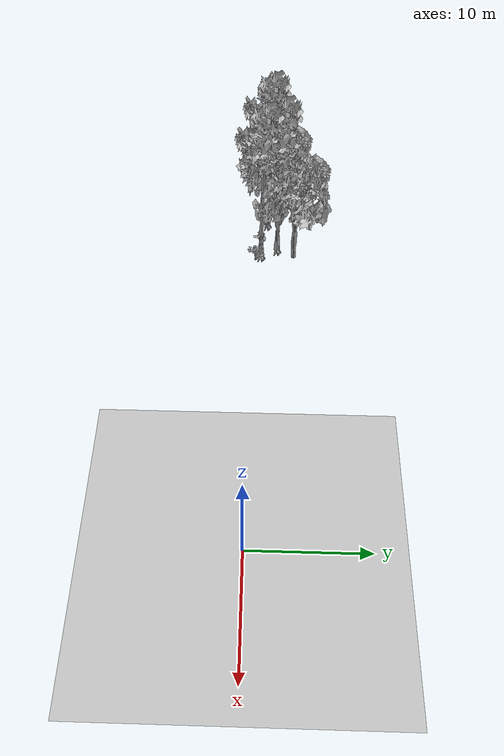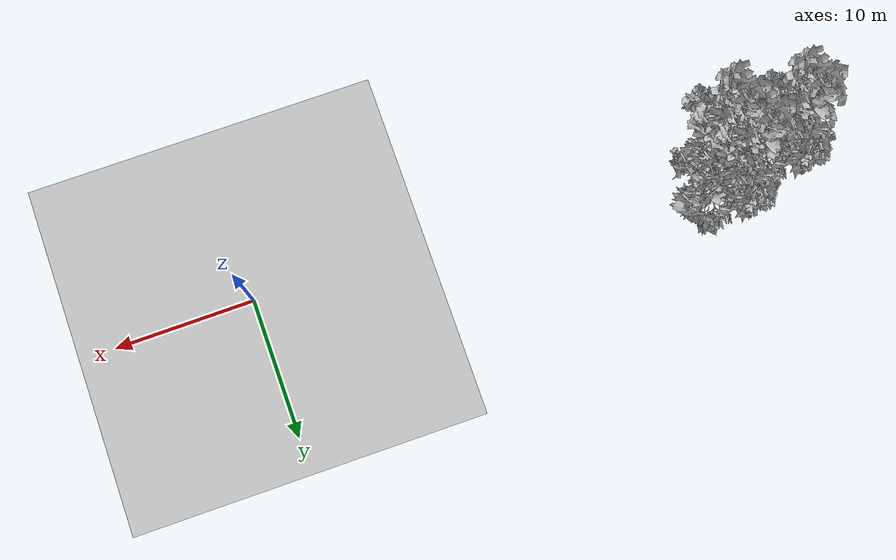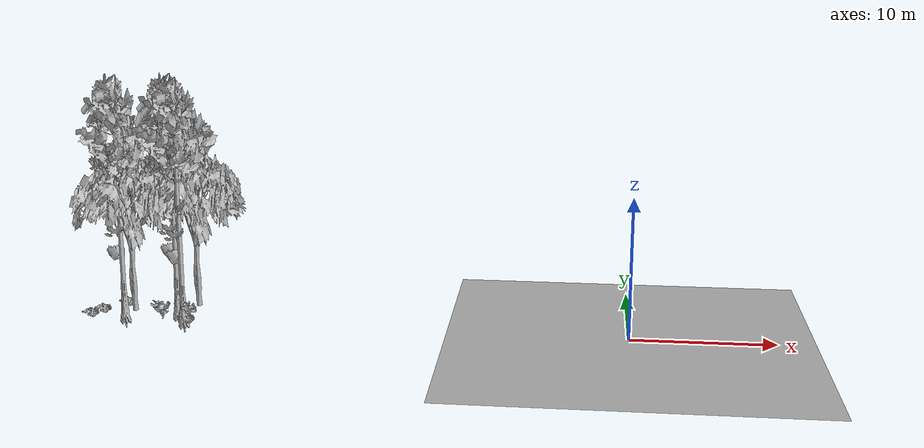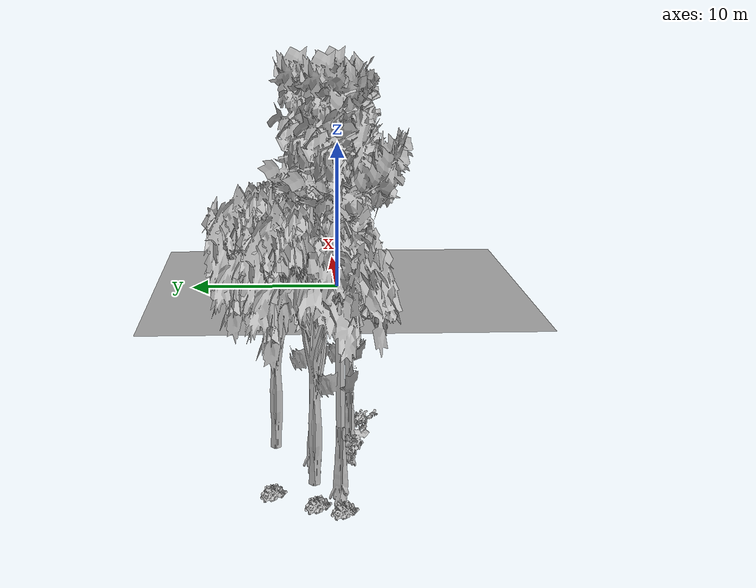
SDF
<sdf version="1.7">
 <world name="default">
  <model name="ground_plane">
   <static>1</static>
   <link name="link">
    <collision name="collision">
     <pose>-50 0 0 0 -0 0</pose>
     <geometry><plane><normal>0 0 1</normal><size>80 80</size></plane></geometry>
     <surface><contact><ode><min_depth>0.01</min_depth><max_vel>0</max_vel></ode></contact></surface>
    </collision>
    <visual name="grass">
     <cast_shadows>0</cast_shadows>
     <geometry>
      <mesh>
       <scale>0.46714285714285714 0.46714285714285714 0.1</scale>
       <uri>file://grass_plane/meshes/grass_plane.dae</uri>
      </mesh>
     </geometry>
    </visual>
   </link>
  </model>
  <model name="Tree 176">
   <static>1</static>
   <pose>-32.51187053662237 2.4670009776553954 0 1.57079 -0 0</pose>
   <link name="link">
    <collision name="collision">
     <geometry><mesh><scale>3.5 5 3.5</scale><uri>model://tree_9/meshes/tree_9.obj</uri></mesh></geometry>
    </collision>
    <visual name="visual">
     <geometry><mesh><scale>3.5 5 3.5</scale><uri>model://tree_9/meshes/tree_9.obj</uri></mesh></geometry>
    </visual>
   </link>
  </model>
  <model name="Tree 184">
   <static>1</static>
   <pose>-36.137096665915216 1.4746937365566666 0 1.57079 -0 0</pose>
   <link name="link">
    <collision name="collision">
     <geometry><mesh><scale>3.5 5 3.5</scale><uri>model://tree_9/meshes/tree_9.obj</uri></mesh></geometry>
    </collision>
    <visual name="visual">
     <geometry><mesh><scale>3.5 5 3.5</scale><uri>model://tree_9/meshes/tree_9.obj</uri></mesh></geometry>
    </visual>
   </link>
  </model>
  <model name="Tree 312">
   <static>1</static>
   <pose>-35.81264573500078 2.4886753276301476 0 1.57079 -0 0</pose>
   <link name="link">
    <collision name="collision">
     <geometry><mesh><scale>3.5 5 3.5</scale><uri>model://tree_2/meshes/tree_2.obj</uri></mesh></geometry>
    </collision>
    <visual name="visual">
     <geometry><mesh><scale>3.5 5 3.5</scale><uri>model://tree_2/meshes/tree_2.obj</uri></mesh></geometry>
    </visual>
   </link>
  </model>
  <model name="Tree 428">
   <static>1</static>
   <pose>-31.484824783709904 4.071798079325049 0 1.57079 -0 0</pose>
   <link name="link">
    <collision name="collision">
     <geometry><mesh><scale>3.5 5 3.5</scale><uri>model://tree_2/meshes/tree_2.obj</uri></mesh></geometry>
    </collision>
    <visual name="visual">
     <geometry><mesh><scale>3.5 5 3.5</scale><uri>model://tree_2/meshes/tree_2.obj</uri></mesh></geometry>
    </visual>
   </link>
  </model>
  <model name="Tree 501">
   <static>1</static>
   <pose>-31.63025374424988 0.8801182193439558 0 1.57079 -0 0</pose>
   <link name="link">
    <collision name="collision">
     <geometry><mesh><scale>3.5 5 3.5</scale><uri>model://tree_9/meshes/tree_9.obj</uri></mesh></geometry>
    </collision>
    <visual name="visual">
     <geometry><mesh><scale>3.5 5 3.5</scale><uri>model://tree_9/meshes/tree_9.obj</uri></mesh></geometry>
    </visual>
   </link>
  </model>
  <model name="Bush 226">
   <static>1</static>
   <pose>-33.16689678529215 0.8624951643284007 0 1.57079 -0 0</pose>
   <link name="link">
    <collision name="collision">
     <geometry><mesh><scale>2 2 2</scale><uri>model://bush_0/meshes/bush_0.obj</uri></mesh></geometry>
     <surface><contact><collide_without_contact>false</collide_without_contact></contact></surface>
    </collision>
    <visual name="visual">
     <geometry><mesh><scale>2 2 2</scale><uri>model://bush_0/meshes/bush_0.obj</uri></mesh></geometry>
    </visual>
   </link>
  </model>
  <model name="Bush 228">
   <static>1</static>
   <pose>-38.70217180464258 1.4152643696964446 0 1.57079 -0 0</pose>
   <link name="link">
    <collision name="collision">
     <geometry><mesh><scale>2 2 2</scale><uri>model://bush_2/meshes/bush_2.obj</uri></mesh></geometry>
     <surface><contact><collide_without_contact>false</collide_without_contact></contact></surface>
    </collision>
    <visual name="visual">
     <geometry><mesh><scale>2 2 2</scale><uri>model://bush_2/meshes/bush_2.obj</uri></mesh></geometry>
    </visual>
   </link>
  </model>
  <model name="Bush 264">
   <static>1</static>
   <pose>-31.38632458617385 0.7557776018184015 0 1.57079 -0 0</pose>
   <link name="link">
    <collision name="collision">
     <geometry><mesh><scale>2 2 2</scale><uri>model://bush_2/meshes/bush_2.obj</uri></mesh></geometry>
     <surface><contact><collide_without_contact>false</collide_without_contact></contact></surface>
    </collision>
    <visual name="visual">
     <geometry><mesh><scale>2 2 2</scale><uri>model://bush_2/meshes/bush_2.obj</uri></mesh></geometry>
    </visual>
   </link>
  </model>
  <model name="Bush 318">
   <static>1</static>
   <pose>-31.0018346240881 0.4161756033366615 0 1.57079 -0 0</pose>
   <link name="link">
    <collision name="collision">
     <geometry><mesh><scale>2 2 2</scale><uri>model://bush_5/meshes/bush_5.obj</uri></mesh></geometry>
     <surface><contact><collide_without_contact>false</collide_without_contact></contact></surface>
    </collision>
    <visual name="visual">
     <geometry><mesh><scale>2 2 2</scale><uri>model://bush_5/meshes/bush_5.obj</uri></mesh></geometry>
    </visual>
   </link>
  </model>
  <model name="Bush 376">
   <static>1</static>
   <pose>-38.137151007714046 2.428298605972323 0 1.57079 -0 0</pose>
   <link name="link">
    <collision name="collision">
     <geometry><mesh><scale>2 2 2</scale><uri>model://bush_2/meshes/bush_2.obj</uri></mesh></geometry>
     <surface><contact><collide_without_contact>false</collide_without_contact></contact></surface>
    </collision>
    <visual name="visual">
     <geometry><mesh><scale>2 2 2</scale><uri>model://bush_2/meshes/bush_2.obj</uri></mesh></geometry>
    </visual>
   </link>
  </model>
  <model name="Bush 435">
   <static>1</static>
   <pose>-36.878441187919165 4.165482577843406 0 1.57079 -0 0</pose>
   <link name="link">
    <collision name="collision">
     <geometry><mesh><scale>2 2 2</scale><uri>model://bush_2/meshes/bush_2.obj</uri></mesh></geometry>
     <surface><contact><collide_without_contact>false</collide_without_contact></contact></surface>
    </collision>
    <visual name="visual">
     <geometry><mesh><scale>2 2 2</scale><uri>model://bush_2/meshes/bush_2.obj</uri></mesh></geometry>
    </visual>
   </link>
  </model>
 </world>
</sdf>
